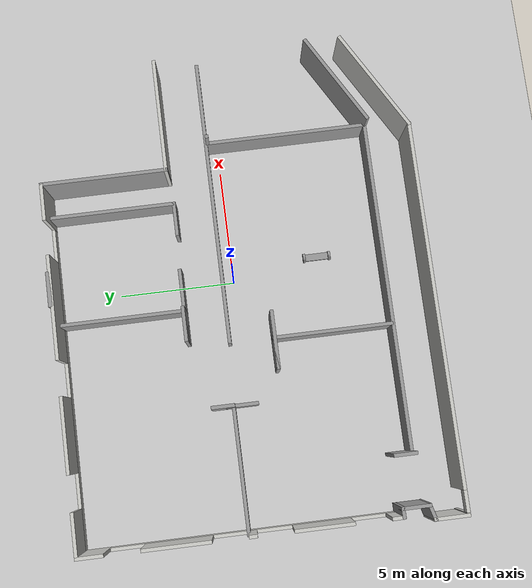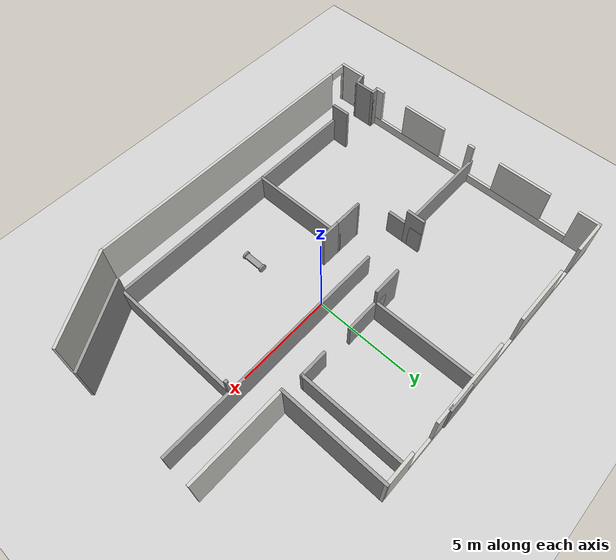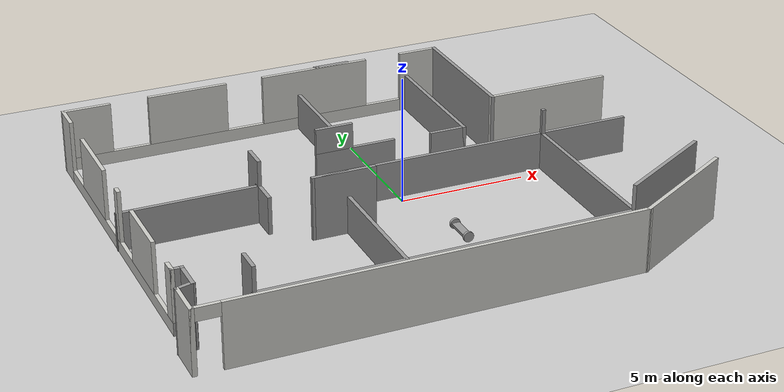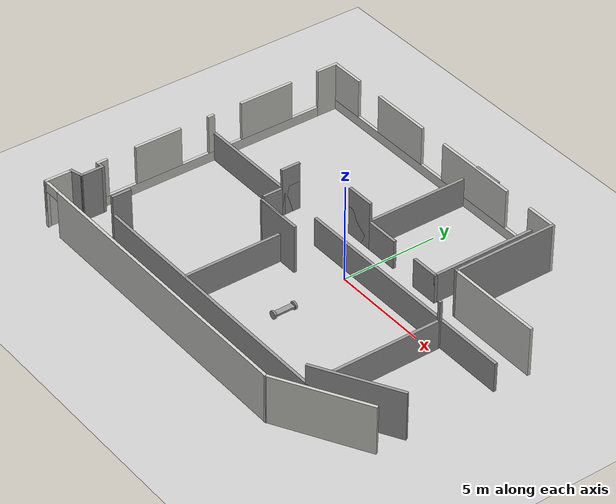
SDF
<sdf version="1.6">
 <world name="default">
  <plugin name="welcome" filename="libwelcome.so"/>
  <light name="sun" type="directional">
   <pose>0 0 10 0 -0 0</pose>
   <diffuse>0.8 0.8 0.8 1</diffuse>
   <specular>0.2 0.2 0.2 1</specular>
   <attenuation>
    <range>1000</range>
    <constant>0.9</constant>
    <linear>0.01</linear>
    <quadratic>0.001</quadratic>
   </attenuation>
   <direction>-0.5 0.1 -0.9</direction>
   <spot><inner_angle>0</inner_angle><outer_angle>0</outer_angle><falloff>0</falloff></spot>
  </light>
  <model name="ground_plane">
   <static>1</static>
   <link name="link">
    <collision name="collision">
     <geometry><plane><normal>0 0 1</normal><size>100 100</size></plane></geometry>
     <surface>
      <contact><collide_bitmask>65535</collide_bitmask></contact>
      <friction><ode><mu>100</mu><mu2>50</mu2></ode></friction>
     </surface>
    </collision>
    <visual name="visual">
     <cast_shadows>0</cast_shadows>
     <geometry><plane><normal>0 0 1</normal><size>100 100</size></plane></geometry>
     <material>
      <script><uri>file://media/materials/scripts/gazebo.material</uri><name>Gazebo/Grey</name></script>
     </material>
    </visual>
   </link>
  </model>
  <gravity>0 0 -9.8</gravity>
  <magnetic_field>6e-06 2.3e-05 -4.2e-05</magnetic_field>
  <atmosphere type="adiabatic"/>
  <physics name="default_physics" default="0" type="ode">
   <max_step_size>0.001</max_step_size>
   <real_time_factor>1</real_time_factor>
   <real_time_update_rate>1000</real_time_update_rate>
  </physics>
  <scene><ambient>0.4 0.4 0.4 1</ambient><background>0.7 0.7 0.7 1</background><shadows>1</shadows></scene>
  <audio><device>default</device></audio>
  <spherical_coordinates>
   <surface_model>EARTH_WGS84</surface_model>
   <latitude_deg>0</latitude_deg>
   <longitude_deg>0</longitude_deg>
   <elevation>0</elevation>
   <heading_deg>0</heading_deg>
  </spherical_coordinates>
  <model name="myoffice2f">
   <pose>-0.56047 -0.34053 0 0 -0 0</pose>
   <link name="Wall_0">
    <collision name="Wall_0_Collision">
     <geometry><box><size>5 0.15 2.5</size></box></geometry>
     <pose>0 0 1.25 0 -0 0</pose>
    </collision>
    <visual name="Wall_0_Visual">
     <pose>0 0 1.25 0 -0 0</pose>
     <geometry><box><size>5 0.15 2.5</size></box></geometry>
     <material>
      <script><uri>file://media/materials/scripts/gazebo.material</uri><name>Gazebo/CeilingTiled</name></script>
      <ambient>1 1 1 1</ambient>
     </material>
     <meta><layer>0</layer></meta>
    </visual>
    <pose>7.82859 2.64137 0 0 -0 3.14159</pose>
   </link>
   <link name="Wall_1">
    <collision name="Wall_1_Collision">
     <geometry><box><size>5.5 0.15 2.5</size></box></geometry>
     <pose>0 0 1.25 0 -0 0</pose>
    </collision>
    <visual name="Wall_1_Visual">
     <pose>0 0 1.25 0 -0 0</pose>
     <geometry><box><size>5.5 0.15 2.5</size></box></geometry>
     <material>
      <script><uri>file://media/materials/scripts/gazebo.material</uri><name>Gazebo/Grey</name></script>
      <ambient>1 1 1 1</ambient>
     </material>
     <meta><layer>0</layer></meta>
    </visual>
    <pose>5.40359 5.31637 0 0 -0 1.5708</pose>
   </link>
   <link name="Wall_11">
    <collision name="Wall_11_Collision">
     <geometry><box><size>4.5 0.15 2.5</size></box></geometry>
     <pose>0 0 1.25 0 -0 0</pose>
    </collision>
    <visual name="Wall_11_Visual">
     <pose>0 0 1.25 0 -0 0</pose>
     <geometry><box><size>4.5 0.15 2.5</size></box></geometry>
     <material>
      <script><uri>file://media/materials/scripts/gazebo.material</uri><name>Gazebo/Grey</name></script>
      <ambient>0.533333 0.541176 0.521569 1</ambient>
     </material>
     <meta><layer>0</layer></meta>
    </visual>
    <pose>8.5317 -5.12122 0 0 -0 -2.61805</pose>
   </link>
   <link name="Wall_12">
    <collision name="Wall_12_Collision">
     <geometry><box><size>14.5 0.15 1.5</size></box></geometry>
     <pose>0 0 0.75 0 -0 0</pose>
    </collision>
    <visual name="Wall_12_Visual">
     <pose>0 0 0.75 0 -0 0</pose>
     <geometry><box><size>14.5 0.15 1.5</size></box></geometry>
     <material>
      <script><uri>file://media/materials/scripts/gazebo.material</uri><name>Gazebo/Grey</name></script>
      <ambient>0.533333 0.541176 0.521569 1</ambient>
     </material>
     <meta><layer>0</layer></meta>
    </visual>
    <pose>-0.527019 -6.20864 0 0 -0 3.14159</pose>
   </link>
   <link name="Wall_13">
    <collision name="Wall_13_Collision">
     <geometry><box><size>1 0.15 2.5</size></box></geometry>
     <pose>0 0 1.25 0 -0 0</pose>
    </collision>
    <visual name="Wall_13_Visual">
     <pose>0 0 1.25 0 -0 0</pose>
     <geometry><box><size>1 0.15 2.5</size></box></geometry>
     <material>
      <script><uri>file://media/materials/scripts/gazebo.material</uri><name>Gazebo/Grey</name></script>
      <ambient>1 1 1 1</ambient>
     </material>
     <meta><layer>0</layer></meta>
    </visual>
    <pose>-7.70191 -5.78372 0 0 -0 1.57053</pose>
   </link>
   <link name="Wall_15">
    <collision name="Wall_15_Collision">
     <geometry><box><size>12.5 0.15 1.5</size></box></geometry>
     <pose>0 0 0.75 0 -0 0</pose>
    </collision>
    <visual name="Wall_15_Visual">
     <pose>0 0 0.75 0 -0 0</pose>
     <geometry><box><size>12.5 0.15 1.5</size></box></geometry>
     <material>
      <script><uri>file://media/materials/scripts/gazebo.material</uri><name>Gazebo/Grey</name></script>
      <ambient>0.533333 0.541176 0.521569 1</ambient>
     </material>
     <meta><layer>0</layer></meta>
    </visual>
    <pose>4.03798 0.821365 0 0 -0 3.14159</pose>
   </link>
   <link name="Wall_19">
    <collision name="Wall_19_Collision">
     <geometry><box><size>7.1 0.15 1.5</size></box></geometry>
     <pose>0 0 0.75 0 -0 0</pose>
    </collision>
    <visual name="Wall_19_Visual">
     <pose>0 0 0.75 0 -0 0</pose>
     <geometry><box><size>7.1 0.15 1.5</size></box></geometry>
     <material>
      <script><uri>file://media/materials/scripts/gazebo.material</uri><name>Gazebo/Grey</name></script>
      <ambient>0.533333 0.541176 0.521569 1</ambient>
     </material>
     <meta><layer>0</layer></meta>
    </visual>
    <pose>6.64798 -2.73364 0 0 -0 1.5708</pose>
   </link>
   <link name="Wall_2">
    <pose>-2.39641 7.99137 0 0 -0 3.14159</pose>
    <visual name="Wall_2_Visual_0">
     <pose>-7.0543 0 1.25 0 -0 0</pose>
     <geometry><box><size>1.64141 0.15 2.5</size></box></geometry>
     <material>
      <script><uri>file://media/materials/scripts/gazebo.material</uri><name>Gazebo/CeilingTiled</name></script>
      <ambient>1 1 1 1</ambient>
     </material>
     <meta><layer>0</layer></meta>
    </visual>
    <collision name="Wall_2_Collision_0">
     <geometry><box><size>1.64141 0.15 2.5</size></box></geometry>
     <pose>-7.0543 0 1.25 0 -0 0</pose>
    </collision>
    <visual name="Wall_2_Visual_1">
     <pose>0.820704 0 0.25 0 -0 0</pose>
     <geometry><box><size>14.1086 0.15 0.5</size></box></geometry>
     <material>
      <script><uri>file://media/materials/scripts/gazebo.material</uri><name>Gazebo/CeilingTiled</name></script>
      <ambient>1 1 1 1</ambient>
     </material>
     <meta><layer>0</layer></meta>
    </visual>
    <collision name="Wall_2_Collision_1">
     <geometry><box><size>14.1086 0.15 0.5</size></box></geometry>
     <pose>0.820704 0 0.25 0 -0 0</pose>
    </collision>
    <visual name="Wall_2_Visual_2">
     <pose>-2.49734 0 1.5 0 -0 0</pose>
     <geometry><box><size>4.4725 0.15 2</size></box></geometry>
     <material>
      <script><uri>file://media/materials/scripts/gazebo.material</uri><name>Gazebo/CeilingTiled</name></script>
      <ambient>1 1 1 1</ambient>
     </material>
     <meta><layer>0</layer></meta>
    </visual>
    <collision name="Wall_2_Collision_2">
     <geometry><box><size>4.4725 0.15 2</size></box></geometry>
     <pose>-2.49734 0 1.5 0 -0 0</pose>
    </collision>
    <visual name="Wall_2_Visual_3">
     <pose>2.84966 0 1.5 0 -0 0</pose>
     <geometry><box><size>3.22151 0.15 2</size></box></geometry>
     <material>
      <script><uri>file://media/materials/scripts/gazebo.material</uri><name>Gazebo/CeilingTiled</name></script>
      <ambient>1 1 1 1</ambient>
     </material>
     <meta><layer>0</layer></meta>
    </visual>
    <collision name="Wall_2_Collision_3">
     <geometry><box><size>3.22151 0.15 2</size></box></geometry>
     <pose>2.84966 0 1.5 0 -0 0</pose>
    </collision>
    <visual name="Wall_2_Visual_4">
     <pose>6.91771 0 1.5 0 -0 0</pose>
     <geometry><box><size>1.91459 0.15 2</size></box></geometry>
     <material>
      <script><uri>file://media/materials/scripts/gazebo.material</uri><name>Gazebo/CeilingTiled</name></script>
      <ambient>1 1 1 1</ambient>
     </material>
     <meta><layer>0</layer></meta>
    </visual>
    <collision name="Wall_2_Collision_4">
     <geometry><box><size>1.91459 0.15 2</size></box></geometry>
     <pose>6.91771 0 1.5 0 -0 0</pose>
    </collision>
   </link>
   <link name="Wall_20">
    <collision name="Wall_20_Collision">
     <geometry><box><size>0.15 0.15 2.5</size></box></geometry>
     <pose>0 0 1.25 0 -0 0</pose>
    </collision>
    <visual name="Wall_20_Visual">
     <pose>0 0 1.25 0 -0 0</pose>
     <geometry><box><size>0.15 0.15 2.5</size></box></geometry>
     <material>
      <script><uri>file://media/materials/scripts/gazebo.material</uri><name>Gazebo/Grey</name></script>
      <ambient>1 1 1 1</ambient>
     </material>
     <meta><layer>0</layer></meta>
    </visual>
    <pose>6.64798 0.741364 0 0 -0 0</pose>
   </link>
   <link name="Wall_22">
    <collision name="Wall_22_Collision">
     <geometry><box><size>5.5 0.15 1.5</size></box></geometry>
     <pose>0 0 0.75 0 -0 0</pose>
    </collision>
    <visual name="Wall_22_Visual">
     <pose>0 0 0.75 0 -0 0</pose>
     <geometry><box><size>5.5 0.15 1.5</size></box></geometry>
     <material>
      <script><uri>file://media/materials/scripts/gazebo.material</uri><name>Gazebo/Grey</name></script>
      <ambient>0.533333 0.541176 0.521569 1</ambient>
     </material>
     <meta><layer>0</layer></meta>
    </visual>
    <pose>-7.54202 0.982364 0 0 -0 0</pose>
   </link>
   <link name="Wall_23">
    <collision name="Wall_23_Collision">
     <geometry><box><size>1 0.15 2.5</size></box></geometry>
     <pose>0 0 1.25 0 -0 0</pose>
    </collision>
    <visual name="Wall_23_Visual">
     <pose>0 0 1.25 0 -0 0</pose>
     <geometry><box><size>1 0.15 2.5</size></box></geometry>
     <material>
      <script><uri>file://media/materials/scripts/gazebo.material</uri><name>Gazebo/Grey</name></script>
      <ambient>0.533333 0.541176 0.521569 1</ambient>
     </material>
     <meta><layer>0</layer></meta>
    </visual>
    <pose>-4.86702 1.40736 0 0 -0 1.5708</pose>
   </link>
   <link name="Wall_24">
    <collision name="Wall_24_Collision">
     <geometry><box><size>2 0.15 1.5</size></box></geometry>
     <pose>0 0 0.75 0 -0 0</pose>
    </collision>
    <visual name="Wall_24_Visual">
     <pose>0 0 0.75 0 -0 0</pose>
     <geometry><box><size>2 0.15 1.5</size></box></geometry>
     <material>
      <script><uri>file://media/materials/scripts/gazebo.material</uri><name>Gazebo/Grey</name></script>
      <ambient>0.533333 0.541176 0.521569 1</ambient>
     </material>
     <meta><layer>0</layer></meta>
    </visual>
    <pose>-4.86702 0.907364 0 0 -0 -1.5708</pose>
   </link>
   <link name="Wall_26">
    <collision name="Wall_26_Collision">
     <geometry><box><size>5.25 0.15 1.5</size></box></geometry>
     <pose>0 0 0.75 0 -0 0</pose>
    </collision>
    <visual name="Wall_26_Visual">
     <pose>0 0 0.75 0 -0 0</pose>
     <geometry><box><size>5.25 0.15 1.5</size></box></geometry>
     <material>
      <script><uri>file://media/materials/scripts/gazebo.material</uri><name>Gazebo/Grey</name></script>
      <ambient>0.533333 0.541176 0.521569 1</ambient>
     </material>
     <meta><layer>0</layer></meta>
    </visual>
    <pose>-2.20702 -3.62764 0 0 -0 1.5708</pose>
   </link>
   <link name="Wall_27">
    <collision name="Wall_27_Collision">
     <geometry><box><size>1.5 0.15 2.5</size></box></geometry>
     <pose>0 0 1.25 0 -0 0</pose>
    </collision>
    <visual name="Wall_27_Visual">
     <pose>0 0 1.25 0 -0 0</pose>
     <geometry><box><size>1.5 0.15 2.5</size></box></geometry>
     <material>
      <script><uri>file://media/materials/scripts/gazebo.material</uri><name>Gazebo/Grey</name></script>
      <ambient>0.533333 0.541176 0.521569 1</ambient>
     </material>
     <meta><layer>0</layer></meta>
    </visual>
    <pose>-2.88187 -1.07779 0 0 -0 -3.14136</pose>
   </link>
   <link name="Wall_28">
    <collision name="Wall_28_Collision">
     <geometry><box><size>2.5 0.15 2.5</size></box></geometry>
     <pose>0 0 1.25 0 -0 0</pose>
    </collision>
    <visual name="Wall_28_Visual">
     <pose>0 0 1.25 0 -0 0</pose>
     <geometry><box><size>2.5 0.15 2.5</size></box></geometry>
     <material>
      <script><uri>file://media/materials/scripts/gazebo.material</uri><name>Gazebo/Grey</name></script>
      <ambient>0.533333 0.541176 0.521569 1</ambient>
     </material>
     <meta><layer>0</layer></meta>
    </visual>
    <pose>-2.38172 -1.07794 0 0 -0 0</pose>
   </link>
   <link name="Wall_3">
    <pose>-10.1964 1.31637 0 0 -0 -1.5708</pose>
    <visual name="Wall_3_Visual_0">
     <pose>-6.15767 0 1.25 0 -0 0</pose>
     <geometry><box><size>1.18465 0.15 2.5</size></box></geometry>
     <material>
      <script><uri>file://media/materials/scripts/gazebo.material</uri><name>Gazebo/CeilingTiled</name></script>
      <ambient>1 1 1 1</ambient>
     </material>
     <meta><layer>0</layer></meta>
    </visual>
    <collision name="Wall_3_Collision_0">
     <geometry><box><size>1.18465 0.15 2.5</size></box></geometry>
     <pose>-6.15767 0 1.25 0 -0 0</pose>
    </collision>
    <visual name="Wall_3_Visual_1">
     <pose>0.592326 0 0.25 0 -0 0</pose>
     <geometry><box><size>12.3153 0.15 0.5</size></box></geometry>
     <material>
      <script><uri>file://media/materials/scripts/gazebo.material</uri><name>Gazebo/CeilingTiled</name></script>
      <ambient>1 1 1 1</ambient>
     </material>
     <meta><layer>0</layer></meta>
    </visual>
    <collision name="Wall_3_Collision_1">
     <geometry><box><size>12.3153 0.15 0.5</size></box></geometry>
     <pose>0.592326 0 0.25 0 -0 0</pose>
    </collision>
    <visual name="Wall_3_Visual_2">
     <pose>-2.61601 0 1.5 0 -0 0</pose>
     <geometry><box><size>2.89867 0.15 2</size></box></geometry>
     <material>
      <script><uri>file://media/materials/scripts/gazebo.material</uri><name>Gazebo/CeilingTiled</name></script>
      <ambient>1 1 1 1</ambient>
     </material>
     <meta><layer>0</layer></meta>
    </visual>
    <collision name="Wall_3_Collision_2">
     <geometry><box><size>2.89867 0.15 2</size></box></geometry>
     <pose>-2.61601 0 1.5 0 -0 0</pose>
    </collision>
    <visual name="Wall_3_Visual_3">
     <pose>0.511478 0 1.5 0 -0 0</pose>
     <geometry><box><size>0.356318 0.15 2</size></box></geometry>
     <material>
      <script><uri>file://media/materials/scripts/gazebo.material</uri><name>Gazebo/CeilingTiled</name></script>
      <ambient>1 1 1 1</ambient>
     </material>
     <meta><layer>0</layer></meta>
    </visual>
    <collision name="Wall_3_Collision_3">
     <geometry><box><size>0.356318 0.15 2</size></box></geometry>
     <pose>0.511478 0 1.5 0 -0 0</pose>
    </collision>
    <visual name="Wall_3_Visual_4">
     <pose>3.4372 0 1.5 0 -0 0</pose>
     <geometry><box><size>2.49512 0.15 2</size></box></geometry>
     <material>
      <script><uri>file://media/materials/scripts/gazebo.material</uri><name>Gazebo/CeilingTiled</name></script>
      <ambient>1 1 1 1</ambient>
     </material>
     <meta><layer>0</layer></meta>
    </visual>
    <collision name="Wall_3_Collision_4">
     <geometry><box><size>2.49512 0.15 2</size></box></geometry>
     <pose>3.4372 0 1.5 0 -0 0</pose>
    </collision>
    <visual name="Wall_3_Visual_5">
     <pose>6.46738 0 1.5 0 -0 0</pose>
     <geometry><box><size>0.565244 0.15 2</size></box></geometry>
     <material>
      <script><uri>file://media/materials/scripts/gazebo.material</uri><name>Gazebo/CeilingTiled</name></script>
      <ambient>1 1 1 1</ambient>
     </material>
     <meta><layer>0</layer></meta>
    </visual>
    <collision name="Wall_3_Collision_5">
     <geometry><box><size>0.565244 0.15 2</size></box></geometry>
     <pose>6.46738 0 1.5 0 -0 0</pose>
    </collision>
   </link>
   <link name="Wall_30">
    <collision name="Wall_30_Collision">
     <geometry><box><size>5.5 0.15 1.5</size></box></geometry>
     <pose>0 0 0.75 0 -0 0</pose>
    </collision>
    <visual name="Wall_30_Visual">
     <pose>0 0 0.75 0 -0 0</pose>
     <geometry><box><size>5.5 0.15 1.5</size></box></geometry>
     <material>
      <script><uri>file://media/materials/scripts/gazebo.material</uri><name>Gazebo/Grey</name></script>
      <ambient>0.533333 0.541176 0.521569 1</ambient>
     </material>
     <meta><layer>0</layer></meta>
    </visual>
    <pose>-0.588019 5.26637 0 0 -0 -1.5708</pose>
   </link>
   <link name="Wall_31">
    <collision name="Wall_31_Collision">
     <geometry><box><size>1.5 0.15 2.5</size></box></geometry>
     <pose>0 0 1.25 0 -0 0</pose>
    </collision>
    <visual name="Wall_31_Visual">
     <pose>0 0 1.25 0 -0 0</pose>
     <geometry><box><size>1.5 0.15 2.5</size></box></geometry>
     <material>
      <script><uri>file://media/materials/scripts/gazebo.material</uri><name>Gazebo/Grey</name></script>
      <ambient>0.533333 0.541176 0.521569 1</ambient>
     </material>
     <meta><layer>0</layer></meta>
    </visual>
    <pose>-1.26302 2.59136 0 0 -0 3.14159</pose>
   </link>
   <link name="Wall_32">
    <collision name="Wall_32_Collision">
     <geometry><box><size>3.25 0.15 1.5</size></box></geometry>
     <pose>0 0 0.75 0 -0 0</pose>
    </collision>
    <visual name="Wall_32_Visual">
     <pose>0 0 0.75 0 -0 0</pose>
     <geometry><box><size>3.25 0.15 1.5</size></box></geometry>
     <material>
      <script><uri>file://media/materials/scripts/gazebo.material</uri><name>Gazebo/Grey</name></script>
      <ambient>0.533333 0.541176 0.521569 1</ambient>
     </material>
     <meta><layer>0</layer></meta>
    </visual>
    <pose>-0.388019 2.59136 0 0 -0 0</pose>
   </link>
   <link name="Wall_34">
    <collision name="Wall_34_Collision">
     <geometry><box><size>5.5 0.15 1.5</size></box></geometry>
     <pose>0 0 0.75 0 -0 0</pose>
    </collision>
    <visual name="Wall_34_Visual">
     <pose>0 0 0.75 0 -0 0</pose>
     <geometry><box><size>5.5 0.15 1.5</size></box></geometry>
     <material>
      <script><uri>file://media/materials/scripts/gazebo.material</uri><name>Gazebo/Grey</name></script>
      <ambient>0.533333 0.541176 0.521569 1</ambient>
     </material>
     <meta><layer>0</layer></meta>
    </visual>
    <pose>4.13598 5.19236 0 0 -0 -1.5708</pose>
   </link>
   <link name="Wall_35">
    <collision name="Wall_35_Collision">
     <geometry><box><size>1.5 0.15 1.5</size></box></geometry>
     <pose>0 0 0.75 0 -0 0</pose>
    </collision>
    <visual name="Wall_35_Visual">
     <pose>0 0 0.75 0 -0 0</pose>
     <geometry><box><size>1.5 0.15 1.5</size></box></geometry>
     <material>
      <script><uri>file://media/materials/scripts/gazebo.material</uri><name>Gazebo/Grey</name></script>
      <ambient>0.533333 0.541176 0.521569 1</ambient>
     </material>
     <meta><layer>0</layer></meta>
    </visual>
    <pose>3.46098 2.51736 0 0 -0 3.14159</pose>
   </link>
   <link name="Wall_4">
    <collision name="Wall_4_Collision">
     <geometry><box><size>0.5 0.15 2.5</size></box></geometry>
     <pose>0 0 1.25 0 -0 0</pose>
    </collision>
    <visual name="Wall_4_Visual">
     <pose>0 0 1.25 0 -0 0</pose>
     <geometry><box><size>0.5 0.15 2.5</size></box></geometry>
     <material>
      <script><uri>file://media/materials/scripts/gazebo.material</uri><name>Gazebo/Grey</name></script>
      <ambient>1 1 1 1</ambient>
     </material>
     <meta><layer>0</layer></meta>
    </visual>
    <pose>-10.0214 -5.35863 0 0 -0 0</pose>
   </link>
   <link name="Wall_5">
    <collision name="Wall_5_Collision">
     <geometry><box><size>1.25 0.15 2.5</size></box></geometry>
     <pose>0 0 1.25 0 -0 0</pose>
    </collision>
    <visual name="Wall_5_Visual">
     <pose>0 0 1.25 0 -0 0</pose>
     <geometry><box><size>1.25 0.15 2.5</size></box></geometry>
     <material>
      <script><uri>file://media/materials/scripts/gazebo.material</uri><name>Gazebo/Grey</name></script>
      <ambient>1 1 1 1</ambient>
     </material>
     <meta><layer>0</layer></meta>
    </visual>
    <pose>-9.84641 -5.90863 0 0 -0 -1.5708</pose>
   </link>
   <link name="Wall_6">
    <collision name="Wall_6_Collision">
     <geometry><box><size>0.75 0.15 2.5</size></box></geometry>
     <pose>0 0 1.25 0 -0 0</pose>
    </collision>
    <visual name="Wall_6_Visual">
     <pose>0 0 1.25 0 -0 0</pose>
     <geometry><box><size>0.75 0.15 2.5</size></box></geometry>
     <material>
      <script><uri>file://media/materials/scripts/gazebo.material</uri><name>Gazebo/Grey</name></script>
      <ambient>1 1 1 1</ambient>
     </material>
     <meta><layer>0</layer></meta>
    </visual>
    <pose>-10.1362 -6.53627 0 0 -0 -2.87979</pose>
   </link>
   <link name="Wall_7">
    <collision name="Wall_7_Collision">
     <geometry><box><size>1.5 0.15 2.5</size></box></geometry>
     <pose>0 0 1.25 0 -0 0</pose>
    </collision>
    <visual name="Wall_7_Visual">
     <pose>0 0 1.25 0 -0 0</pose>
     <geometry><box><size>1.5 0.15 2.5</size></box></geometry>
     <material>
      <script><uri>file://media/materials/scripts/gazebo.material</uri><name>Gazebo/CeilingTiled</name></script>
      <ambient>1 1 1 1</ambient>
     </material>
     <meta><layer>0</layer></meta>
    </visual>
    <pose>-10.426 -7.28892 0 0 -0 -1.5708</pose>
   </link>
   <link name="Wall_8">
    <pose>-2.12596 -7.96392 0 0 -0 0</pose>
    <visual name="Wall_8_Visual_0">
     <pose>-8.28286 0 1.25 0 -0 0</pose>
     <geometry><box><size>0.184276 0.15 2.5</size></box></geometry>
     <material>
      <script><uri>file://media/materials/scripts/gazebo.material</uri><name>Gazebo/CeilingTiled</name></script>
      <ambient>1 1 1 1</ambient>
     </material>
     <meta><layer>0</layer></meta>
    </visual>
    <collision name="Wall_8_Collision_0">
     <geometry><box><size>0.184276 0.15 2.5</size></box></geometry>
     <pose>-8.28286 0 1.25 0 -0 0</pose>
    </collision>
    <visual name="Wall_8_Visual_1">
     <pose>0.542138 0 1.25 0 -0 0</pose>
     <geometry><box><size>15.6657 0.15 2.5</size></box></geometry>
     <material>
      <script><uri>file://media/materials/scripts/gazebo.material</uri><name>Gazebo/CeilingTiled</name></script>
      <ambient>1 1 1 1</ambient>
     </material>
     <meta><layer>0</layer></meta>
    </visual>
    <collision name="Wall_8_Collision_1">
     <geometry><box><size>15.6657 0.15 2.5</size></box></geometry>
     <pose>0.542138 0 1.25 0 -0 0</pose>
    </collision>
    <visual name="Wall_8_Visual_2">
     <pose>-7.74072 0 2.25 0 -0 0</pose>
     <geometry><box><size>0.9 0.15 0.5</size></box></geometry>
     <material>
      <script><uri>file://media/materials/scripts/gazebo.material</uri><name>Gazebo/CeilingTiled</name></script>
      <ambient>1 1 1 1</ambient>
     </material>
     <meta><layer>0</layer></meta>
    </visual>
    <collision name="Wall_8_Collision_2">
     <geometry><box><size>0.9 0.15 0.5</size></box></geometry>
     <pose>-7.74072 0 2.25 0 -0 0</pose>
    </collision>
   </link>
   <link name="Wall_9">
    <collision name="Wall_9_Collision">
     <geometry><box><size>5 0.15 2.5</size></box></geometry>
     <pose>0 0 1.25 0 -0 0</pose>
    </collision>
    <visual name="Wall_9_Visual">
     <pose>0 0 1.25 0 -0 0</pose>
     <geometry><box><size>5 0.15 2.5</size></box></geometry>
     <material>
      <script><uri>file://media/materials/scripts/gazebo.material</uri><name>Gazebo/CeilingTiled</name></script>
      <ambient>1 1 1 1</ambient>
     </material>
     <meta><layer>0</layer></meta>
    </visual>
    <pose>8.27415 -6.75142 0 0 -0 0.523599</pose>
   </link>
   <link name="Window_6">
    <collision name="Window_6_Collision">
     <geometry><box><size>1.5 0.17 2</size></box></geometry>
     <pose>0 0 1 0 -0 0</pose>
    </collision>
    <visual name="Window_6_Visual">
     <pose>0 0 1 0 -0 0</pose>
     <geometry><box><size>1.5 0.17 2</size></box></geometry>
     <material>
      <script><uri>file://media/materials/scripts/gazebo.material</uri><name>Gazebo/Grey</name></script>
     </material>
    </visual>
    <pose>0.867675 8.06875 0.5 0 -0 0</pose>
   </link>
   <static>1</static>
  </model>
  <model name="office">
   <link name="link_1">
    <inertial>
     <mass>1</mass>
     <inertia>
      <ixx>0.166667</ixx>
      <ixy>0</ixy>
      <ixz>0</ixz>
      <iyy>0.166667</iyy>
      <iyz>0</iyz>
      <izz>0.166667</izz>
     </inertia>
    </inertial>
    <visual name="visual">
     <geometry><box><size>0.3 1 0.1</size></box></geometry>
     <material>
      <lighting>1</lighting>
      <script><uri>file://media/materials/scripts/gazebo.material</uri><name>Gazebo/Grey</name></script>
      <shader type="vertex"><normal_map>__default__</normal_map></shader>
      <ambient>0.3 0.3 0.3 1</ambient>
      <diffuse>0.7 0.7 0.7 1</diffuse>
      <specular>0.01 0.01 0.01 1</specular>
      <emissive>0 0 0 1</emissive>
     </material>
    </visual>
    <collision name="collision">
     <geometry><box><size>0.3 1 0.1</size></box></geometry>
     <surface>
      <friction>
       <ode><mu>1</mu><mu2>1</mu2><fdir1>0 0 0</fdir1><slip1>0</slip1><slip2>0</slip2></ode>
       <torsional>
        <coefficient>1</coefficient>
        <patch_radius>0</patch_radius>
        <surface_radius>0</surface_radius>
        <use_patch_radius>1</use_patch_radius>
        <ode><slip>0</slip></ode>
       </torsional>
      </friction>
      <bounce><restitution_coefficient>0</restitution_coefficient><threshold>1e+06</threshold></bounce>
      <contact>
       <collide_without_contact>0</collide_without_contact>
       <collide_without_contact_bitmask>1</collide_without_contact_bitmask>
       <collide_bitmask>1</collide_bitmask>
       <ode>
        <soft_cfm>0</soft_cfm>
        <soft_erp>0.2</soft_erp>
        <kp>1e+13</kp>
        <kd>1</kd>
        <max_vel>0.01</max_vel>
        <min_depth>0</min_depth>
       </ode>
       <bullet>
        <split_impulse>1</split_impulse>
        <split_impulse_penetration_threshold>-0.01</split_impulse_penetration_threshold>
        <soft_cfm>0</soft_cfm>
        <soft_erp>0.2</soft_erp>
        <kp>1e+13</kp>
        <kd>1</kd>
       </bullet>
      </contact>
     </surface>
    </collision>
   </link>
   <link name="link_3">
    <inertial>
     <mass>1</mass>
     <inertia><ixx>0.145833</ixx><ixy>0</ixy><ixz>0</ixz><iyy>0.145833</iyy><iyz>0</iyz><izz>0.125</izz></inertia>
    </inertial>
    <pose>-0 -0.550019 0 1.5707 -0 0</pose>
    <visual name="visual">
     <geometry><cylinder><radius>0.2</radius><length>0.1</length></cylinder></geometry>
     <material>
      <lighting>1</lighting>
      <script><uri>file://media/materials/scripts/gazebo.material</uri><name>Gazebo/Grey</name></script>
      <shader type="vertex"><normal_map>__default__</normal_map></shader>
      <ambient>0.3 0.3 0.3 1</ambient>
      <diffuse>0.7 0.7 0.7 1</diffuse>
      <specular>0.01 0.01 0.01 1</specular>
      <emissive>0 0 0 1</emissive>
     </material>
    </visual>
    <collision name="collision">
     <geometry><cylinder><radius>0.2</radius><length>0.1</length></cylinder></geometry>
     <surface>
      <friction>
       <ode><mu>1</mu><mu2>1</mu2><fdir1>0 0 0</fdir1><slip1>0</slip1><slip2>0</slip2></ode>
       <torsional>
        <coefficient>1</coefficient>
        <patch_radius>0</patch_radius>
        <surface_radius>0</surface_radius>
        <use_patch_radius>1</use_patch_radius>
        <ode><slip>0</slip></ode>
       </torsional>
      </friction>
      <bounce><restitution_coefficient>0</restitution_coefficient><threshold>1e+06</threshold></bounce>
      <contact>
       <collide_without_contact>0</collide_without_contact>
       <collide_without_contact_bitmask>1</collide_without_contact_bitmask>
       <collide_bitmask>1</collide_bitmask>
       <ode>
        <soft_cfm>0</soft_cfm>
        <soft_erp>0.2</soft_erp>
        <kp>1e+13</kp>
        <kd>1</kd>
        <max_vel>0.01</max_vel>
        <min_depth>0</min_depth>
       </ode>
       <bullet>
        <split_impulse>1</split_impulse>
        <split_impulse_penetration_threshold>-0.01</split_impulse_penetration_threshold>
        <soft_cfm>0</soft_cfm>
        <soft_erp>0.2</soft_erp>
        <kp>1e+13</kp>
        <kd>1</kd>
       </bullet>
      </contact>
     </surface>
    </collision>
   </link>
   <link name="link_3_clone">
    <inertial>
     <mass>1</mass>
     <inertia><ixx>0.145833</ixx><ixy>0</ixy><ixz>0</ixz><iyy>0.145833</iyy><iyz>0</iyz><izz>0.125</izz></inertia>
    </inertial>
    <pose>-0 0.550019 0 1.5707 -0 0</pose>
    <visual name="visual">
     <geometry><cylinder><radius>0.2</radius><length>0.1</length></cylinder></geometry>
     <material>
      <lighting>1</lighting>
      <script><uri>file://media/materials/scripts/gazebo.material</uri><name>Gazebo/Grey</name></script>
      <shader type="vertex"><normal_map>__default__</normal_map></shader>
      <ambient>0.3 0.3 0.3 1</ambient>
      <diffuse>0.7 0.7 0.7 1</diffuse>
      <specular>0.01 0.01 0.01 1</specular>
      <emissive>0 0 0 1</emissive>
     </material>
    </visual>
    <collision name="collision">
     <geometry><cylinder><radius>0.2</radius><length>0.1</length></cylinder></geometry>
     <surface>
      <friction>
       <ode><mu>1</mu><mu2>1</mu2><fdir1>0 0 0</fdir1><slip1>0</slip1><slip2>0</slip2></ode>
       <torsional>
        <coefficient>1</coefficient>
        <patch_radius>0</patch_radius>
        <surface_radius>0</surface_radius>
        <use_patch_radius>1</use_patch_radius>
        <ode><slip>0</slip></ode>
       </torsional>
      </friction>
      <bounce><restitution_coefficient>0</restitution_coefficient><threshold>1e+06</threshold></bounce>
      <contact>
       <collide_without_contact>0</collide_without_contact>
       <collide_without_contact_bitmask>1</collide_without_contact_bitmask>
       <collide_bitmask>1</collide_bitmask>
       <ode>
        <soft_cfm>0</soft_cfm>
        <soft_erp>0.2</soft_erp>
        <kp>1e+13</kp>
        <kd>1</kd>
        <max_vel>0.01</max_vel>
        <min_depth>0</min_depth>
       </ode>
       <bullet>
        <split_impulse>1</split_impulse>
        <split_impulse_penetration_threshold>-0.01</split_impulse_penetration_threshold>
        <soft_cfm>0</soft_cfm>
        <soft_erp>0.2</soft_erp>
        <kp>1e+13</kp>
        <kd>1</kd>
       </bullet>
      </contact>
     </surface>
    </collision>
   </link>
   <joint name="link_1_JOINT_0" type="revolute">
    <parent>link_1</parent>
    <child>link_3</child>
    <axis>
     <xyz>0 0 1</xyz>
     <use_parent_model_frame>0</use_parent_model_frame>
     <limit>
      <lower>-1.79769e+308</lower>
      <upper>1.79769e+308</upper>
      <effort>-1</effort>
      <velocity>-1</velocity>
     </limit>
     <dynamics>
      <spring_reference>0</spring_reference>
      <spring_stiffness>0</spring_stiffness>
      <damping>0</damping>
     </dynamics>
    </axis>
    <physics>
     <ode><limit><cfm>0</cfm><erp>0.2</erp></limit><suspension><cfm>0</cfm><erp>0.2</erp></suspension></ode>
    </physics>
   </joint>
   <joint name="link_1_JOINT_1" type="revolute">
    <parent>link_1</parent>
    <child>link_3_clone</child>
    <axis>
     <xyz>0 0 1</xyz>
     <use_parent_model_frame>0</use_parent_model_frame>
     <limit>
      <lower>-1.79769e+308</lower>
      <upper>1.79769e+308</upper>
      <effort>-1</effort>
      <velocity>-1</velocity>
     </limit>
     <dynamics>
      <spring_reference>0</spring_reference>
      <spring_stiffness>0</spring_stiffness>
      <damping>0</damping>
     </dynamics>
    </axis>
    <physics>
     <ode><limit><cfm>0</cfm><erp>0.2</erp></limit><suspension><cfm>0</cfm><erp>0.2</erp></suspension></ode>
    </physics>
   </joint>
   <static>0</static>
   <pose>0.645055 -3.76299 0.5 0 -0 0</pose>
  </model>
 </world>
</sdf>
